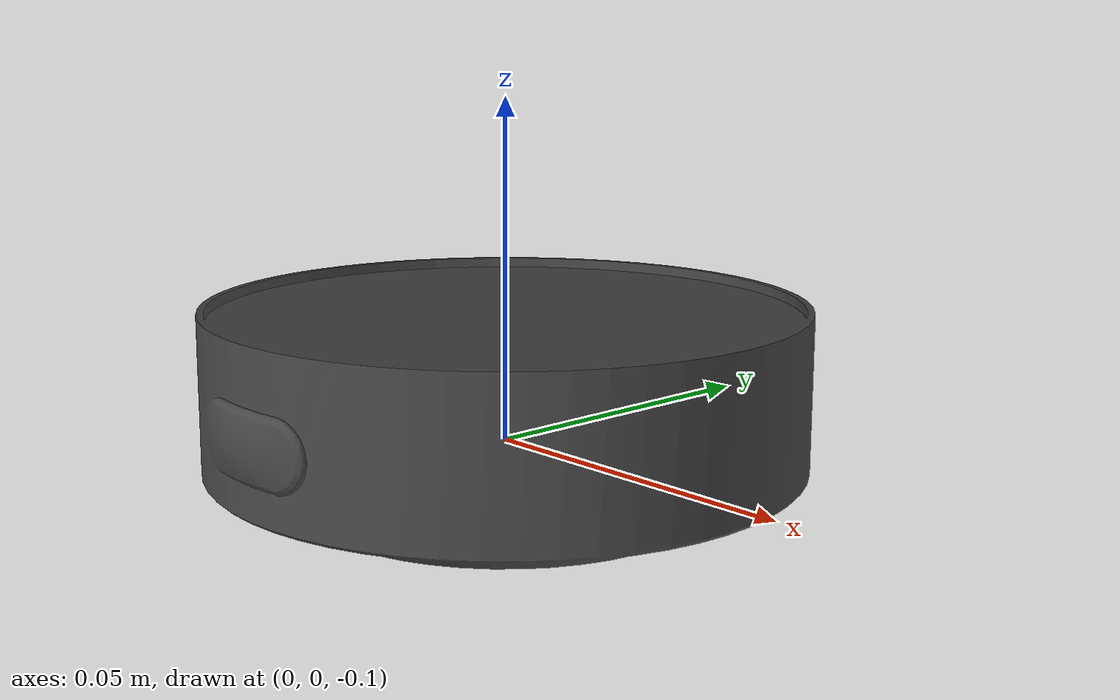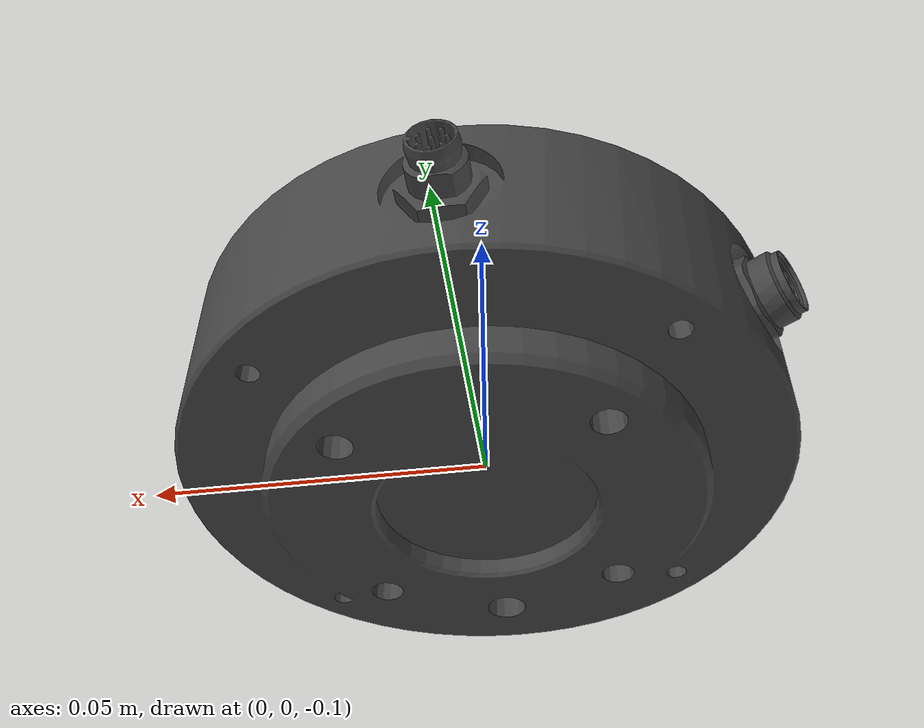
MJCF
<mujoco model="LINK_13">
  <default>
    <default class="visual">
      <geom group="2" type="mesh" contype="0" conaffinity="0"/>
    </default>
    <default class="collision">
      <geom group="3" type="mesh"/>
    </default>
  </default>
  <asset>
    <material name="69,69,69" specular="1.0" shininess="1.0" rgba="0.270588 0.270588 0.270588 1.000000"/>
    <mesh file="LINK_13.obj"/>
    <mesh file="LINK_13_collision_0.obj"/>
    <mesh file="LINK_13_collision_1.obj"/>
    <mesh file="LINK_13_collision_2.obj"/>
    <mesh file="LINK_13_collision_3.obj"/>
    <mesh file="LINK_13_collision_4.obj"/>
    <mesh file="LINK_13_collision_5.obj"/>
    <mesh file="LINK_13_collision_6.obj"/>
    <mesh file="LINK_13_collision_7.obj"/>
    <mesh file="LINK_13_collision_8.obj"/>
    <mesh file="LINK_13_collision_9.obj"/>
    <mesh file="LINK_13_collision_10.obj"/>
    <mesh file="LINK_13_collision_11.obj"/>
    <mesh file="LINK_13_collision_12.obj"/>
    <mesh file="LINK_13_collision_13.obj"/>
    <mesh file="LINK_13_collision_14.obj"/>
    <mesh file="LINK_13_collision_15.obj"/>
    <mesh file="LINK_13_collision_16.obj"/>
    <mesh file="LINK_13_collision_17.obj"/>
    <mesh file="LINK_13_collision_18.obj"/>
    <mesh file="LINK_13_collision_19.obj"/>
    <mesh file="LINK_13_collision_20.obj"/>
    <mesh file="LINK_13_collision_21.obj"/>
    <mesh file="LINK_13_collision_22.obj"/>
    <mesh file="LINK_13_collision_23.obj"/>
    <mesh file="LINK_13_collision_24.obj"/>
    <mesh file="LINK_13_collision_25.obj"/>
    <mesh file="LINK_13_collision_26.obj"/>
    <mesh file="LINK_13_collision_27.obj"/>
    <mesh file="LINK_13_collision_28.obj"/>
    <mesh file="LINK_13_collision_29.obj"/>
    <mesh file="LINK_13_collision_30.obj"/>
    <mesh file="LINK_13_collision_31.obj"/>
    <mesh file="LINK_13_collision_32.obj"/>
    <mesh file="LINK_13_collision_33.obj"/>
    <mesh file="LINK_13_collision_34.obj"/>
    <mesh file="LINK_13_collision_35.obj"/>
    <mesh file="LINK_13_collision_36.obj"/>
    <mesh file="LINK_13_collision_37.obj"/>
    <mesh file="LINK_13_collision_38.obj"/>
    <mesh file="LINK_13_collision_39.obj"/>
    <mesh file="LINK_13_collision_40.obj"/>
    <mesh file="LINK_13_collision_41.obj"/>
  </asset>
  <worldbody>
    <body name="LINK_13">
      <geom material="69,69,69" mesh="LINK_13" class="visual"/>
      <geom mesh="LINK_13_collision_0" rgba="0.120867103230205 0.6684248164786597 0.3017274548395369 1" class="collision"/>
      <geom mesh="LINK_13_collision_1" rgba="0.9320052895154802 0.9249269805256366 0.8419405470359125 1" class="collision"/>
      <geom mesh="LINK_13_collision_2" rgba="0.9579523820878637 0.07527316992474598 0.161828328158928 1" class="collision"/>
      <geom mesh="LINK_13_collision_3" rgba="0.09388813598732215 0.20395322825647044 0.4929461555823137 1" class="collision"/>
      <geom mesh="LINK_13_collision_4" rgba="0.2191386549544938 0.7615328664460776 0.38471377424045017 1" class="collision"/>
      <geom mesh="LINK_13_collision_5" rgba="0.7759719772836612 0.09824832492053304 0.5102721758768869 1" class="collision"/>
      <geom mesh="LINK_13_collision_6" rgba="0.5973250872347791 0.66214508937778 0.5422854099528583 1" class="collision"/>
      <geom mesh="LINK_13_collision_7" rgba="0.7692214875071063 0.5985504502198984 0.3267488205953408 1" class="collision"/>
      <geom mesh="LINK_13_collision_8" rgba="0.5244574109687554 0.8584377296514963 0.5440060521626341 1" class="collision"/>
      <geom mesh="LINK_13_collision_9" rgba="0.7002470515602325 0.0061797344311157465 0.21858981130384414 1" class="collision"/>
      <geom mesh="LINK_13_collision_10" rgba="0.8115359144699149 0.3761639863186923 0.4795265864384539 1" class="collision"/>
      <geom mesh="LINK_13_collision_11" rgba="0.6256284660995937 0.09735782678139304 0.9338000393669235 1" class="collision"/>
      <geom mesh="LINK_13_collision_12" rgba="0.1353952446063037 0.5964545146473145 0.6200477971718714 1" class="collision"/>
      <geom mesh="LINK_13_collision_13" rgba="0.8401152005173745 0.4311561548556363 0.9431777218347468 1" class="collision"/>
      <geom mesh="LINK_13_collision_14" rgba="0.5164750989449478 0.28835034639874235 0.4240547527120704 1" class="collision"/>
      <geom mesh="LINK_13_collision_15" rgba="0.4082534209303854 0.5034856629080134 0.4616294644383364 1" class="collision"/>
      <geom mesh="LINK_13_collision_16" rgba="0.14106901959623686 0.48650038962779396 0.09761202523831902 1" class="collision"/>
      <geom mesh="LINK_13_collision_17" rgba="0.48079741038164003 0.4015798043363248 0.5625294734162445 1" class="collision"/>
      <geom mesh="LINK_13_collision_18" rgba="0.5096276903510815 0.040331785349119964 0.17583973820336396 1" class="collision"/>
      <geom mesh="LINK_13_collision_19" rgba="0.20734479400528216 0.9288111674331506 0.8044680203306128 1" class="collision"/>
      <geom mesh="LINK_13_collision_20" rgba="0.2169260477683176 0.5761690707895236 0.06586427289892771 1" class="collision"/>
      <geom mesh="LINK_13_collision_21" rgba="0.8213019608526888 0.30900376796167583 0.6535654992286459 1" class="collision"/>
      <geom mesh="LINK_13_collision_22" rgba="0.17575988007595222 0.658647095647505 0.6566345443843826 1" class="collision"/>
      <geom mesh="LINK_13_collision_23" rgba="0.5373108052165527 0.3277617376720564 0.6138669004472522 1" class="collision"/>
      <geom mesh="LINK_13_collision_24" rgba="0.35832158694517724 0.4930469083196932 0.7550593914369379 1" class="collision"/>
      <geom mesh="LINK_13_collision_25" rgba="0.38077189689873925 0.8869479058317623 0.4903443347934605 1" class="collision"/>
      <geom mesh="LINK_13_collision_26" rgba="0.9716266360284301 0.46872064503402633 0.049479557929391293 1" class="collision"/>
      <geom mesh="LINK_13_collision_27" rgba="0.8848542004233286 0.47172507363796023 0.38625379444098973 1" class="collision"/>
      <geom mesh="LINK_13_collision_28" rgba="0.4274246764067432 0.7738097737873392 0.7006297314452653 1" class="collision"/>
      <geom mesh="LINK_13_collision_29" rgba="0.40694339908525456 0.1351300751338783 0.6209629974534386 1" class="collision"/>
      <geom mesh="LINK_13_collision_30" rgba="0.9932751272991398 0.8515663326718401 0.5996874940719134 1" class="collision"/>
      <geom mesh="LINK_13_collision_31" rgba="0.8970290743353275 0.5545374101703561 0.21734843228160372 1" class="collision"/>
      <geom mesh="LINK_13_collision_32" rgba="0.971613987376516 0.0560572091008793 0.021195477316112266 1" class="collision"/>
      <geom mesh="LINK_13_collision_33" rgba="0.39225680881488534 0.6832245998759878 0.8121808556619585 1" class="collision"/>
      <geom mesh="LINK_13_collision_34" rgba="0.4811178788334757 0.11874492926689639 0.9674387095336682 1" class="collision"/>
      <geom mesh="LINK_13_collision_35" rgba="0.9150523834717029 0.10159891414013145 0.06128127189762167 1" class="collision"/>
      <geom mesh="LINK_13_collision_36" rgba="0.3196158293605641 0.7742643730717125 0.42780167263107904 1" class="collision"/>
      <geom mesh="LINK_13_collision_37" rgba="0.17762137714875104 0.9585276612679325 0.7107123113933538 1" class="collision"/>
      <geom mesh="LINK_13_collision_38" rgba="0.6688341626000274 0.28509806757324596 0.11150714511524529 1" class="collision"/>
      <geom mesh="LINK_13_collision_39" rgba="0.9666915414086662 0.04564540239581483 0.5255915219317281 1" class="collision"/>
      <geom mesh="LINK_13_collision_40" rgba="0.3548431206253161 0.6841466483553145 0.20187882086962183 1" class="collision"/>
      <geom mesh="LINK_13_collision_41" rgba="0.9689715087548747 0.3821498314670032 0.4945993826078554 1" class="collision"/>
    </body>
  </worldbody>
</mujoco>
